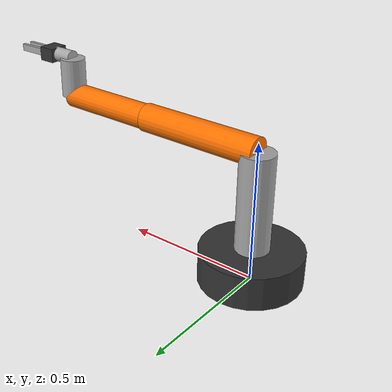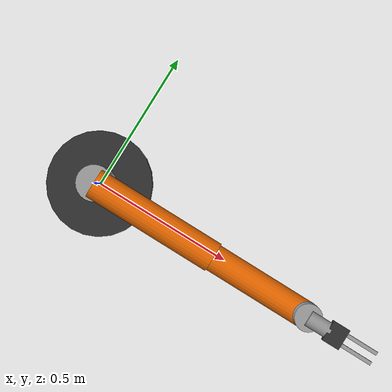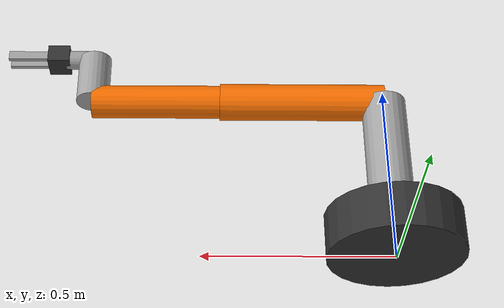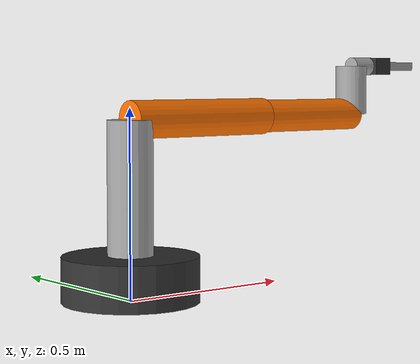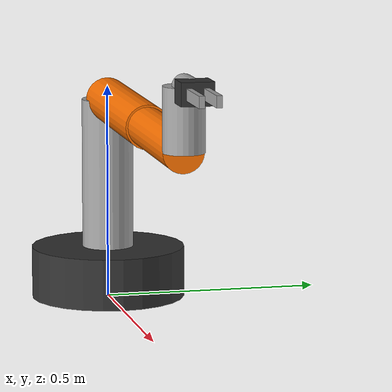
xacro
<?xml version="1.0"?>
<robot name="arm_4dof_5axis" xmlns:xacro="http://www.ros.org/wiki/xacro">

  <xacro:arg name="use_sim" default="true"/>

  <material name="orange">
    <color rgba="1.0 0.45 0.0 1.0"/>
  </material>
  <material name="steel_gray">
    <color rgba="0.65 0.65 0.65 1.0"/>
  </material>
  <material name="dark_gray">
    <color rgba="0.20 0.20 0.20 1.0"/>
  </material>

  <link name="world"/>

  <!-- Motor 1: base yaw (Z) -->
  <link name="base_link">
    <visual>
      <origin xyz="0 0 0.06" rpy="0 0 0"/>
      <geometry>
        <cylinder radius="0.18" length="0.12"/>
      </geometry>
      <material name="dark_gray"/>
    </visual>
    <collision>
      <origin xyz="0 0 0.06" rpy="0 0 0"/>
      <geometry>
        <cylinder radius="0.18" length="0.12"/>
      </geometry>
    </collision>
    <inertial>
      <origin xyz="0 0 0.06" rpy="0 0 0"/>
      <mass value="12.0"/>
      <inertia ixx="0.08" ixy="0.0" ixz="0.0" iyy="0.08" iyz="0.0" izz="0.12"/>
    </inertial>
  </link>

  <joint name="world_to_base" type="fixed">
    <parent link="world"/>
    <child link="base_link"/>
    <origin xyz="0 0 0" rpy="0 0 0"/>
  </joint>

  <link name="link_1">
    <visual>
      <origin xyz="0 0 0.175" rpy="0 0 0"/>
      <geometry>
        <cylinder radius="0.06" length="0.35"/>
      </geometry>
      <material name="steel_gray"/>
    </visual>
    <collision>
      <origin xyz="0 0 0.175" rpy="0 0 0"/>
      <geometry>
        <cylinder radius="0.06" length="0.35"/>
      </geometry>
    </collision>
    <inertial>
      <origin xyz="0 0 0.175" rpy="0 0 0"/>
      <mass value="6.0"/>
      <inertia ixx="0.07" ixy="0.0" ixz="0.0" iyy="0.07" iyz="0.0" izz="0.01"/>
    </inertial>
  </link>

  <joint name="joint_1" type="revolute">
    <parent link="base_link"/>
    <child link="link_1"/>
    <origin xyz="0 0 0.12" rpy="0 0 0"/>
    <axis xyz="0 0 1"/>
    <limit lower="-3.1416" upper="3.1416" effort="120.0" velocity="1.8"/>
    <dynamics damping="0.6" friction="0.1"/>
  </joint>

  <!-- Motor 2: shoulder pitch (Y) -->
  <link name="link_2">
    <visual>
      <origin xyz="0.225 0 0" rpy="0 1.5708 0"/>
      <geometry>
        <cylinder radius="0.05" length="0.45"/>
      </geometry>
      <material name="orange"/>
    </visual>
    <collision>
      <origin xyz="0.225 0 0" rpy="0 1.5708 0"/>
      <geometry>
        <cylinder radius="0.05" length="0.45"/>
      </geometry>
    </collision>
    <inertial>
      <origin xyz="0.225 0 0" rpy="0 0 0"/>
      <mass value="4.5"/>
      <inertia ixx="0.01" ixy="0.0" ixz="0.0" iyy="0.08" iyz="0.0" izz="0.08"/>
    </inertial>
  </link>

  <joint name="joint_2" type="revolute">
    <parent link="link_1"/>
    <child link="link_2"/>
    <origin xyz="0 0 0.35" rpy="0 0 0"/>
    <axis xyz="0 1 0"/>
    <limit lower="-1.57" upper="1.57" effort="100.0" velocity="1.8"/>
    <dynamics damping="0.6" friction="0.08"/>
  </joint>

  <!-- Motor 3: elbow pitch (Y) -->
  <link name="link_3">
    <visual>
      <origin xyz="0.175 0 0" rpy="0 1.5708 0"/>
      <geometry>
        <cylinder radius="0.045" length="0.35"/>
      </geometry>
      <material name="orange"/>
    </visual>
    <collision>
      <origin xyz="0.175 0 0" rpy="0 1.5708 0"/>
      <geometry>
        <cylinder radius="0.045" length="0.35"/>
      </geometry>
    </collision>
    <inertial>
      <origin xyz="0.175 0 0" rpy="0 0 0"/>
      <mass value="3.5"/>
      <inertia ixx="0.01" ixy="0.0" ixz="0.0" iyy="0.05" iyz="0.0" izz="0.05"/>
    </inertial>
  </link>

  <joint name="joint_3" type="revolute">
    <parent link="link_2"/>
    <child link="link_3"/>
    <origin xyz="0.45 0 0" rpy="0 0 0"/>
    <axis xyz="0 1 0"/>
    <limit lower="-2.1" upper="2.1" effort="80.0" velocity="2.0"/>
    <dynamics damping="0.5" friction="0.06"/>
  </joint>

  <!-- Motor 4: wrist rotate (X) -->
  <link name="link_4">
    <visual>
      <origin xyz="0 0 0.07" rpy="0 0 0"/>
      <geometry>
        <cylinder radius="0.045" length="0.14"/>
      </geometry>
      <material name="steel_gray"/>
    </visual>
    <collision>
      <origin xyz="0 0 0.07" rpy="0 0 0"/>
      <geometry>
        <cylinder radius="0.045" length="0.14"/>
      </geometry>
    </collision>
    <inertial>
      <origin xyz="0 0 0.07" rpy="0 0 0"/>
      <mass value="1.6"/>
      <inertia ixx="0.003" ixy="0.0" ixz="0.0" iyy="0.003" iyz="0.0" izz="0.0015"/>
    </inertial>
  </link>

  <joint name="joint_4" type="revolute">
    <parent link="link_3"/>
    <child link="link_4"/>
    <origin xyz="0.35 0 0" rpy="0 0 0"/>
    <axis xyz="1 0 0"/>
    <limit lower="-2.6" upper="2.6" effort="45.0" velocity="2.5"/>
    <dynamics damping="0.3" friction="0.04"/>
  </joint>

  <!-- Motor 5: tool-axis rotate, mechanically coupled to Motor 4 -->
  <link name="link_5">
    <!-- Gripper base -->
    <visual>
      <origin xyz="0.04 0 0" rpy="0 1.5708 0"/>
      <geometry>
        <cylinder radius="0.026" length="0.08"/>
      </geometry>
      <material name="steel_gray"/>
    </visual>
    <!-- Gripper palm -->
    <visual>
      <origin xyz="0.10 0 0" rpy="0 0 0"/>
      <geometry>
        <box size="0.06 0.07 0.05"/>
      </geometry>
      <material name="dark_gray"/>
    </visual>
    <collision>
      <origin xyz="0.04 0 0" rpy="0 1.5708 0"/>
      <geometry>
        <cylinder radius="0.026" length="0.08"/>
      </geometry>
    </collision>
    <collision>
      <origin xyz="0.10 0 0" rpy="0 0 0"/>
      <geometry>
        <box size="0.06 0.07 0.05"/>
      </geometry>
    </collision>
    <inertial>
      <origin xyz="0.08 0 0" rpy="0 0 0"/>
      <mass value="0.9"/>
      <inertia ixx="0.0010" ixy="0.0" ixz="0.0" iyy="0.0035" iyz="0.0" izz="0.0035"/>
    </inertial>
  </link>

  <link name="left_finger_link">
    <visual>
      <origin xyz="0.06 0 0" rpy="0 0 0"/>
      <geometry>
        <box size="0.12 0.012 0.025"/>
      </geometry>
      <material name="steel_gray"/>
    </visual>
    <collision>
      <origin xyz="0.06 0 0" rpy="0 0 0"/>
      <geometry>
        <box size="0.12 0.012 0.025"/>
      </geometry>
    </collision>
    <inertial>
      <origin xyz="0.06 0 0" rpy="0 0 0"/>
      <mass value="0.12"/>
      <inertia ixx="0.00004" ixy="0.0" ixz="0.0" iyy="0.00018" iyz="0.0" izz="0.00018"/>
    </inertial>
  </link>

  <joint name="left_finger_joint" type="prismatic">
    <parent link="link_5"/>
    <child link="left_finger_link"/>
    <origin xyz="0.12 0.018 0" rpy="0 0 0"/>
    <axis xyz="0 1 0"/>
    <limit lower="0.0" upper="0.020" effort="40.0" velocity="0.06"/>
    <dynamics damping="15.0" friction="2.0"/>
  </joint>

  <link name="right_finger_link">
    <visual>
      <origin xyz="0.06 0 0" rpy="0 0 0"/>
      <geometry>
        <box size="0.12 0.012 0.025"/>
      </geometry>
      <material name="steel_gray"/>
    </visual>
    <collision>
      <origin xyz="0.06 0 0" rpy="0 0 0"/>
      <geometry>
        <box size="0.12 0.012 0.025"/>
      </geometry>
    </collision>
    <inertial>
      <origin xyz="0.06 0 0" rpy="0 0 0"/>
      <mass value="0.12"/>
      <inertia ixx="0.00004" ixy="0.0" ixz="0.0" iyy="0.00018" iyz="0.0" izz="0.00018"/>
    </inertial>
  </link>

  <joint name="right_finger_joint" type="prismatic">
    <parent link="link_5"/>
    <child link="right_finger_link"/>
    <origin xyz="0.12 -0.018 0" rpy="0 0 0"/>
    <axis xyz="0 -1 0"/>
    <limit lower="0.0" upper="0.020" effort="40.0" velocity="0.06"/>
    <dynamics damping="15.0" friction="2.0"/>
    <mimic joint="left_finger_joint" multiplier="1.0" offset="0.0"/>
  </joint>

  <joint name="joint_5" type="revolute">
    <parent link="link_4"/>
    <child link="link_5"/>
    <origin xyz="0 0 0.14" rpy="0 0 0"/>
    <axis xyz="1 0 0"/>
    <limit lower="-2.6" upper="2.6" effort="30.0" velocity="2.5"/>
    <dynamics damping="0.6" friction="0.2"/>
    <mimic joint="joint_4" multiplier="1.0" offset="0.0"/>
  </joint>

  <link name="tool0"/>
  <joint name="tool0_fixed" type="fixed">
    <parent link="link_5"/>
    <child link="tool0"/>
    <origin xyz="0.23 0 0" rpy="0 0 0"/>
  </joint>

  <ros2_control name="GazeboSystem" type="system">
    <hardware>
      <plugin>gazebo_ros2_control/GazeboSystem</plugin>
    </hardware>

    <joint name="joint_1">
      <command_interface name="position"/>
      <state_interface name="position"/>
      <state_interface name="velocity"/>
    </joint>
    <joint name="joint_2">
      <command_interface name="position"/>
      <state_interface name="position"/>
      <state_interface name="velocity"/>
    </joint>
    <joint name="joint_3">
      <command_interface name="position"/>
      <state_interface name="position"/>
      <state_interface name="velocity"/>
    </joint>
    <joint name="joint_4">
      <command_interface name="position"/>
      <state_interface name="position"/>
      <state_interface name="velocity"/>
    </joint>
    <joint name="joint_5">
      <param name="mimic">joint_4</param>
      <param name="multiplier">1.0</param>
      <state_interface name="position"/>
      <state_interface name="velocity"/>
    </joint>
    <joint name="left_finger_joint">
      <command_interface name="position"/>
      <state_interface name="position"/>
      <state_interface name="velocity"/>
    </joint>
    <joint name="right_finger_joint">
      <param name="mimic">left_finger_joint</param>
      <param name="multiplier">1.0</param>
      <state_interface name="position"/>
      <state_interface name="velocity"/>
    </joint>
  </ros2_control>

  <gazebo reference="left_finger_link">
    <mu1>8.0</mu1>
    <mu2>8.0</mu2>
    <kp>1000000.0</kp>
    <kd>10.0</kd>
    <minDepth>0.001</minDepth>
    <maxVel>0.2</maxVel>
  </gazebo>

  <gazebo reference="right_finger_link">
    <mu1>8.0</mu1>
    <mu2>8.0</mu2>
    <kp>1000000.0</kp>
    <kd>10.0</kd>
    <minDepth>0.001</minDepth>
    <maxVel>0.2</maxVel>
  </gazebo>

  <xacro:if value="$(arg use_sim)">
    <gazebo>
      <plugin name="gazebo_ros2_control" filename="libgazebo_ros2_control.so">
        <parameters>$(find arm_4dof_5axis_description)/config/controllers.yaml</parameters>
      </plugin>
    </gazebo>
  </xacro:if>

</robot>
